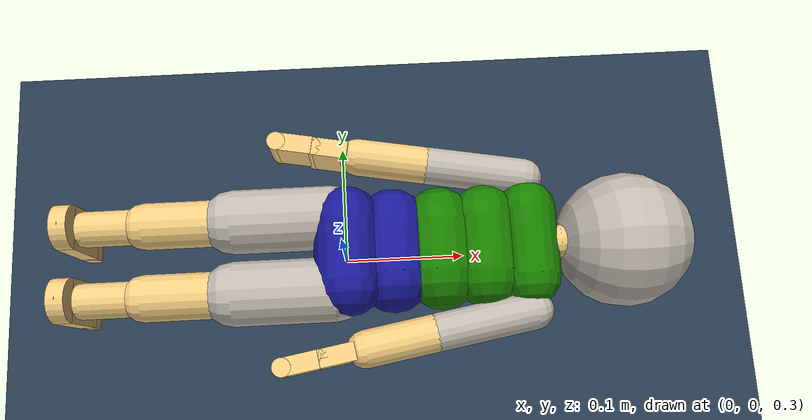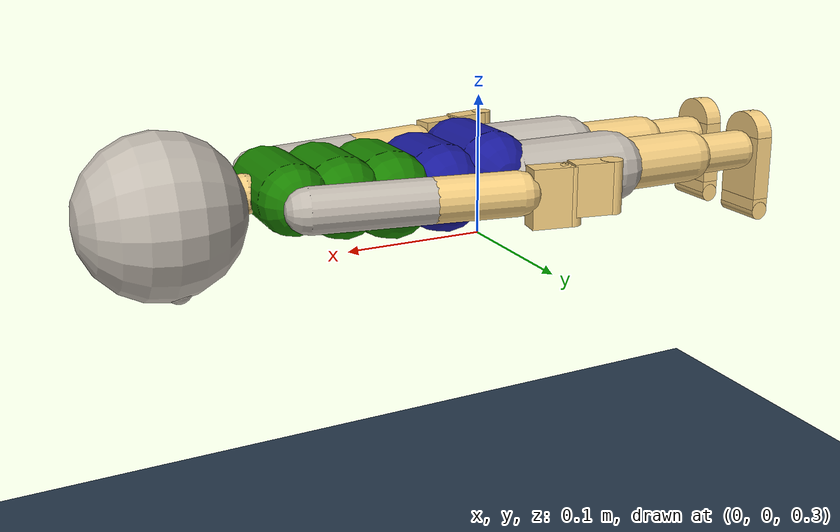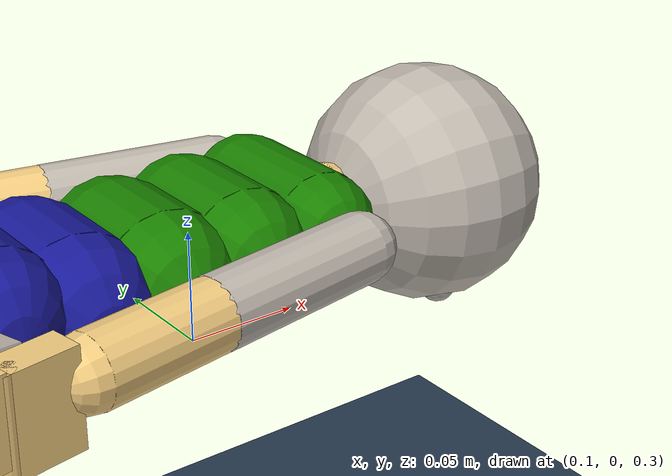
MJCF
<mujoco model="MIMo">

    <compiler inertiafromgeom="true" angle="degree"/>
    <option timestep="0.005" iterations="50" tolerance="1e-10" solver="Newton" jacobian="dense" cone="elliptic" impratio="1.0"/>
    <size nconmax="1000" njmax="5000" nstack="10000000" nuser_cam="3"/>

    <visual>
        <map force="0.1" zfar="30" znear="0.005"/>
        <rgba haze="0.15 0.25 0.35 1"/>
        <quality shadowsize="4096"/>
        <global offwidth="800" offheight="800"/>
    </visual>

    <asset>

        <texture type="skybox" builtin="gradient" rgb1="0.3 0.5 0.7" rgb2="0 0 0" width="512" height="512"/>

        <texture name="texplane" type="2d" builtin="checker" rgb1=".2 .3 .4" rgb2=".1 0.15 0.2" width="512" height="512" mark="cross" markrgb=".8 .8 .8"/>
        <material name="matplane" reflectance="0.3" texture="texplane" texrepeat="1 1" texuniform="true"/>

        <material name="orange" rgba="0.9 0.4 0 1" specular=".2" shininess=".8"/>

    </asset>

	<size nuser_actuator="3" />

	<default>
		<default class="mimo">
        	<joint limited="true" damping=".1" stiffness=".1" armature="0.001" solimplimit="0.98 0.99 0.001 .5 1" solreflimit="0.02 1" />
        	<geom condim="3" material="skin" friction="1 0.005 0.0002" solimp="0.95 0.99 0.001 0.5 1" solref="0.005 1" />
        	<motor ctrlrange="-1 1" ctrllimited="true" forcelimited="true" />
		</default>
    </default>

    <asset>

		<texture name="tex_head_default" type="cube" fileright="tex/head_front.png" fileleft="tex/head_back.png" fileup="tex/head_left.png" filedown="tex/head_right.png" filefront="tex/head_top.png" rgb1="0.95 .8 .5" />
		<texture name="tex_head_happy" type="cube" fileright="tex/head_front_happy.png" fileleft="tex/head_back.png" fileup="tex/head_left.png" filedown="tex/head_right.png" filefront="tex/head_top.png" rgb1="0.95 .8 .5" />
		<texture name="tex_head_sad" type="cube" fileright="tex/head_front_sad.png" fileleft="tex/head_back.png" fileup="tex/head_left.png" filedown="tex/head_right.png" filefront="tex/head_top.png" rgb1="0.95 .8 .5" />
		<texture name="tex_head_surprised" type="cube" fileright="tex/head_front_surprised.png" fileleft="tex/head_back.png" fileup="tex/head_left.png" filedown="tex/head_right.png" filefront="tex/head_top.png" rgb1="0.95 .8 .5" />
		<texture name="tex_head_angry" type="cube" fileright="tex/head_front_angry.png" fileleft="tex/head_back.png" fileup="tex/head_left.png" filedown="tex/head_right.png" filefront="tex/head_top.png" rgb1="0.95 .8 .5" />
		<texture name="tex_head_disgusted" type="cube" fileright="tex/head_front_disgusted.png" fileleft="tex/head_back.png" fileup="tex/head_left.png" filedown="tex/head_right.png" filefront="tex/head_top.png" rgb1="0.95 .8 .5" />
		<texture name="tex_head_scared" type="cube" fileright="tex/head_front_scared.png" fileleft="tex/head_back.png" fileup="tex/head_left.png" filedown="tex/head_right.png" filefront="tex/head_top.png" rgb1="0.95 .8 .5" />
		<texture name="tex_top_sleeve" type="cube" fileright="tex/sleeve_right.png" fileleft="tex/sleeve_left.png" fileup="tex/sleeve_up.png" filedown="tex/sleeve_down.png" filefront="tex/sleeve_front.png" fileback="tex/sleeve_back.png" rgb1="0.95 .8 .5" />
		<texture name="tex_pants_leg" type="cube" fileright="tex/leg_right.png" fileleft="tex/leg_left.png" fileup="tex/leg_up.png" filedown="tex/leg_down.png" filefront="tex/leg_front.png" fileback="tex/leg_back.png" rgb1="0.95 .8 .5" />
		<texture name="tex_eye_left" type="cube" fileright="tex/eye_pupil_left.png" rgb1="1 1 1" />
		<texture name="tex_eye_right" type="cube" fileright="tex/eye_pupil_right.png" rgb1="1 1 1" />

		<material name="skin" rgba="0.95 0.8 0.5 1" specular=".15" shininess=".7" />
		<material name="buttons" rgba=".05 .05 .05 1" specular=".9" shininess=".9" />
		<material name="head" texture="tex_head_default" texuniform="true" specular=".0" shininess=".0" />
		<material name="top_up" rgba=".1 .5 0.0 1" specular=".0" shininess=".0" />
		<material name="top_middle" rgba=".1 .5 0.0 1" specular=".0" shininess=".0" />
		<material name="top_down" rgba=".1 .5 0.0 1" specular=".0" shininess=".0" />
		<material name="top_sleeve" texture="tex_top_sleeve" texuniform="true" specular=".0" shininess=".0" />
		<material name="pants_up" rgba="0.1 0.1 0.6 1" specular=".0" shininess=".0" />
		<material name="pants_down" rgba="0.1 0.1 0.6 1" specular=".0" shininess=".0" />
		<material name="pants_leg" texture="tex_pants_leg" texuniform="true" specular=".0" shininess=".0" />
		<material name="eye_left" texture="tex_eye_left" texuniform="true" specular=".0" shininess=".0" />
		<material name="eye_right" texture="tex_eye_right" texuniform="true" specular=".0" shininess=".0" />

    </asset>

	<contact>
		<pair geom1="lb" geom2="ub1" condim="1" />
		<exclude body1="left_eye" body2="upper_body" />
		<exclude body1="right_eye" body2="upper_body" />
	</contact>

	<tendon>
		<fixed class="mimo" name="hip_bend" limited="true" range="-.01 .01">
			<joint joint="robot:hip_bend1" coef="1" />
			<joint joint="robot:hip_bend2" coef="-1" />
		</fixed>
		<fixed class="mimo" name="hip_rotation" limited="true" range="-.01 .01">
			<joint joint="robot:hip_rot1" coef="1" />
			<joint joint="robot:hip_rot2" coef="-1" />
		</fixed>
		<fixed class="mimo" name="hip_lean" limited="true" range="-.01 .01">
			<joint joint="robot:hip_lean1" coef="1" />
			<joint joint="robot:hip_lean2" coef="-.5" />
		</fixed>
		<fixed class="mimo" name="head_limits1" limited="true" range="-2.1 2.1">
			<joint joint="robot:head_swivel" coef="1" />
			<joint joint="robot:head_tilt_side" coef="1" />
		</fixed>
		<fixed class="mimo" name="head_limits2" limited="true" range="-2.1 2.1">
			<joint joint="robot:head_tilt" coef="1" />
			<joint joint="robot:head_tilt_side" coef="1" />
		</fixed>
		<fixed class="mimo" name="head_limits3" limited="true" range="-2.1 2.1">
			<joint joint="robot:head_swivel" coef="1" />
			<joint joint="robot:head_tilt" coef="1" />
		</fixed>
		<fixed class="mimo" name="head_limits1_sym" limited="true" range="-2.1 2.1">
			<joint joint="robot:head_swivel" coef="1" />
			<joint joint="robot:head_tilt_side" coef="-1" />
		</fixed>
		<fixed class="mimo" name="head_limits2_sym" limited="true" range="-2.1 2.1">
			<joint joint="robot:head_tilt" coef="1" />
			<joint joint="robot:head_tilt_side" coef="-1" />
		</fixed>
		<fixed class="mimo" name="head_limits3_sym" limited="true" range="-2.1 2.1">
			<joint joint="robot:head_swivel" coef="1" />
			<joint joint="robot:head_tilt" coef="-1" />
		</fixed>
	</tendon>

	<sensor>
		<accelerometer name="vestibular_acc" site="vestibular" />
		<gyro name="vestibular_gyro" site="vestibular" />

		<torque name="proprio:neck" site="torque_neck" />
		<torque name="proprio:left_eye" site="torque_left_eye" />
		<torque name="proprio:right_eye" site="torque_right_eye" />

		<torque name="proprio:chest" site="torque_chest" />
		<torque name="proprio:trunk_upper" site="torque_ub" />
		<torque name="proprio:trunk_lower" site="torque_lb" />

		<torque name="proprio:right_shoulder" site="torque_right_shoulder" />
		<torque name="proprio:right_elbow" site="torque_right_elbow" />
		<torque name="proprio:right_wrist" site="torque_right_wrist" />
		<torque name="proprio:right_fingers" site="torque_right_fingers" />

		<torque name="proprio:left_shoulder" site="torque_left_shoulder" />
		<torque name="proprio:left_elbow" site="torque_left_elbow" />
		<torque name="proprio:left_wrist" site="torque_left_wrist" />
		<torque name="proprio:left_fingers" site="torque_left_fingers" />

		<torque name="proprio:right_hip" site="torque_right_hip" />
		<torque name="proprio:right_knee" site="torque_right_knee" />
		<torque name="proprio:right_ankle" site="torque_right_ankle" />
		<torque name="proprio:right_toes" site="torque_right_toes" />

		<torque name="proprio:left_hip" site="torque_left_hip" />
		<torque name="proprio:left_knee" site="torque_left_knee" />
		<torque name="proprio:left_ankle" site="torque_left_ankle" />
		<torque name="proprio:left_toes" site="torque_left_toes" />

		<framelinvel name="kobayashi:left_wrist" objtype="site" objname="KOBAYASHI_LWrist" />
		<framelinvel name="kobayashi:right_wrist" objtype="site" objname="KOBAYASHI_RWrist" />
		<framelinvel name="kobayashi:left_ankle" objtype="site" objname="KOBAYASHI_LAnkle" />
		<framelinvel name="kobayashi:right_ankle" objtype="site" objname="KOBAYASHI_RAnkle" />
		<framelinvel name="kobayashi:torso" objtype="site" objname="KOBAYASHI_Torso" />
	</sensor>

  <actuator>
		<motor class="mimo" name="act:hip_bend" joint="robot:hip_bend1" gear="1.9656450510895187" forcerange="-1 .765" user=".8574 32.93 22.97" />
		<motor class="mimo" name="act:hip_twist" joint="robot:hip_rot1" gear="0.6744131886063283" forcerange="-1 1" user="1.699 8.136 8.136" />
		<motor class="mimo" name="act:hip_lean" joint="robot:hip_lean1" gear="1.3469684896407381" forcerange="-1 1" user="1.278 1.264 1.264" />

		<motor class="mimo" name="act:chest_twist" joint="robot:chest_rot" gear="0.06688395258905734" forcerange="-1 1" user="1.699 8.136 8.136" />
		<motor class="mimo" name="act:chest_lean" joint="robot:chest_lean" gear="0.13376790517811468" forcerange="-1 1" user="1.278 1.264 1.264" />

		<motor class="mimo" name="act:head_swivel" joint="robot:head_swivel" gear="0.7170287341631918" forcerange="-1 1" user=".6665 24.87 24.87" />
		<motor class="mimo" name="act:head_tilt" joint="robot:head_tilt" gear="1.3145526792991848" forcerange="-1 .55" user=".9338 31.39 16.86" />
		<motor class="mimo" name="act:head_tilt_side" joint="robot:head_tilt_side" gear="0.7170287341631918" forcerange="-1 1" user="1.068 15.69 15.69" />

		<motor class="mimo" name="act:left_eye_horizontal" joint="robot:left_eye_horizontal" gear="0.0021510862024895754" forcerange="-1 1" user="5.110 .03025 .03025" />
		<motor class="mimo" name="act:left_eye_vertical" joint="robot:left_eye_vertical" gear="0.0021510862024895754" forcerange="-1 1" user="6.179 .02619 .02771" />
		<motor class="mimo" name="act:left_eye_torsional" joint="robot:left_eye_torsional" gear="0.0014738923980021164" forcerange="-1 1" user="25.03 .003686 .003686" />
		<motor class="mimo" name="act:right_eye_horizontal" joint="robot:right_eye_horizontal" gear="0.0021510862024895754" forcerange="-1 1" user="5.110 .03025 .03025" />
		<motor class="mimo" name="act:right_eye_vertical" joint="robot:right_eye_vertical" gear="0.0021510862024895754" forcerange="-1 1" user="6.179 .02619 .02771" />
		<motor class="mimo" name="act:right_eye_torsional" joint="robot:right_eye_torsional" gear="0.0014738923980021164" forcerange="-1 1" user="25.03 .003686 .003686" />

		<motor class="mimo" name="act:right_shoulder_horizontal" joint="robot:right_shoulder_horizontal" gear="0.4993398493928391" forcerange="-1 1" user="1.811 18.80 15.30" />
		<motor class="mimo" name="act:right_shoulder_abduction" joint="robot:right_shoulder_ad_ab" gear="1.1096441097618646" forcerange="-.6875 1" user=".8793 44.17 69.23" />
		<motor class="mimo" name="act:right_shoulder_internal" joint="robot:right_shoulder_rotation" gear="0.6935275686011654" forcerange="-1 .64" user="1.498 25.09 17.10" />
		<motor class="mimo" name="act:right_elbow" joint="robot:right_elbow" gear="1.1132438625653438" forcerange="-1 .83" user="1.566 35.43 27.04" />
		<motor class="mimo" name="act:right_wrist_rotation" joint="robot:right_hand1" gear="0.24606580201074185" forcerange="-1 1" user="1.513 7.842 7.842" />
		<motor class="mimo" name="act:right_wrist_flexion" joint="robot:right_hand2" gear="0.4358879921333142" forcerange="-1 .57" user="1.455 13.66 7.874" />
		<motor class="mimo" name="act:right_wrist_ulnar" joint="robot:right_hand3" gear="0.3339464455860068" forcerange="-.87 1" user="2.254 5.155 6.021" />
		<motor class="mimo" name="act:right_fingers" joint="robot:right_fingers" gear="0.24255057626773127" forcerange="-1 .33" user="3.019 6.854 2.551" />

		<motor class="mimo" name="act:left_shoulder_horizontal" joint="robot:left_shoulder_horizontal" gear="0.4993398493928391" forcerange="-1 1" user="1.811 18.80 15.30" />
		<motor class="mimo" name="act:left_shoulder_abduction" joint="robot:left_shoulder_ad_ab" gear="1.1096441097618646" forcerange="-.6875 1" user=".8793 44.17 69.23" />
		<motor class="mimo" name="act:left_shoulder_internal" joint="robot:left_shoulder_rotation" gear="0.6935275686011654" forcerange="-1 .64" user="1.498 25.09 17.10" />
		<motor class="mimo" name="act:left_elbow" joint="robot:left_elbow" gear="1.1132438625653438" forcerange="-1 .83" user="1.566 35.43 27.04" />
		<motor class="mimo" name="act:left_wrist_rotation" joint="robot:left_hand1" gear="0.24606580201074185" forcerange="-1 1" user="1.513 7.842 7.842" />
		<motor class="mimo" name="act:left_wrist_flexion" joint="robot:left_hand2" gear="0.4358879921333142" forcerange="-1 .57" user="1.455 13.66 7.874" />
		<motor class="mimo" name="act:left_wrist_ulnar" joint="robot:left_hand3" gear="0.3339464455860068" forcerange="-.87 1" user="2.254 5.155 6.021" />
		<motor class="mimo" name="act:left_fingers" joint="robot:left_fingers" gear="0.24255057626773127" forcerange="-1 .33" user="3.019 6.854 2.551" />

		<motor class="mimo" name="act:right_hip_flex" joint="robot:right_hip1" gear="2.626170534644533" forcerange="-1 1" user="1.083 71.25 92.49" />
		<motor class="mimo" name="act:right_hip_abduction" joint="robot:right_hip2" gear="2.048413017022736" forcerange="-1 1" user="1.488 24.81 29.20" />
		<motor class="mimo" name="act:right_hip_rotation" joint="robot:right_hip3" gear="1.1620804615802058" forcerange="-.75 1" user="1.860 12.32 15.78" />
		<motor class="mimo" name="act:right_knee" joint="robot:right_knee" gear="2.8953460212410613" forcerange="-.65 1" user="1.450 63.16 89.27" />
		<motor class="mimo" name="act:right_foot_flexion" joint="robot:right_foot1" gear="1.265382259751871" forcerange="-1 .5" user="1.430 21.34 11.87" />
		<motor class="mimo" name="act:right_foot_inversion" joint="robot:right_foot2" gear="0.3883183654265001" forcerange="-.91 1" user="1.988 4.184 4.645" />
		<motor class="mimo" name="act:right_foot_rotation" joint="robot:right_foot3" gear="0.4017086538894829" forcerange="-1 1" user="2.688 3.868 3.625" />
		<motor class="mimo" name="act:right_toes" joint="robot:right_toes" gear="0.11046987981960779" forcerange="-1 .3" user="1.290 2.947 .8440" />

		<motor class="mimo" name="act:left_hip_flex" joint="robot:left_hip1" gear="2.626170534644533" forcerange="-1 1" user="1.083 71.25 92.49" />
		<motor class="mimo" name="act:left_hip_abduction" joint="robot:left_hip2" gear="2.048413017022736" forcerange="-1 1" user="1.488 24.81 29.20" />
		<motor class="mimo" name="act:left_hip_rotation" joint="robot:left_hip3" gear="1.1620804615802058" forcerange="-.75 1" user="1.860 12.32 15.78" />
		<motor class="mimo" name="act:left_knee" joint="robot:left_knee" gear="2.8953460212410613" forcerange="-.65 1" user="1.450 63.16 89.27" />
		<motor class="mimo" name="act:left_foot_flexion" joint="robot:left_foot1" gear="1.265382259751871" forcerange="-1 .5" user="1.430 21.34 11.87" />
		<motor class="mimo" name="act:left_foot_inversion" joint="robot:left_foot2" gear="0.3883183654265001" forcerange="-.91 1" user="1.988 4.184 4.645" />
		<motor class="mimo" name="act:left_foot_rotation" joint="robot:left_foot3" gear="0.4017086538894829" forcerange="-1 1" user="2.688 3.868 3.625" />
		<motor class="mimo" name="act:left_toes" joint="robot:left_toes" gear="0.11046987981960779" forcerange="-1 .3" user="1.290 2.947 .8440" />
	</actuator>

	<equality>
		<joint name="robot:hip_lean1" joint1="robot:hip_lean1" active="false" polycoef="0 1 0 0 0" />
		<joint name="robot:hip_rot1" joint1="robot:hip_rot1" active="false" polycoef="0 1 0 0 0" />
		<joint name="robot:hip_bend1" joint1="robot:hip_bend1" active="false" polycoef="0 1 0 0 0" />
		<joint name="robot:hip_lean2" joint1="robot:hip_lean2" active="false" polycoef="0 1 0 0 0" />
		<joint name="robot:hip_rot2" joint1="robot:hip_rot2" active="false" polycoef="0 1 0 0 0" />
		<joint name="robot:hip_bend2" joint1="robot:hip_bend2" active="false" polycoef="0 1 0 0 0" />
		<joint name="robot:head_swivel" joint1="robot:head_swivel" active="false" polycoef="0 1 0 0 0" />
		<joint name="robot:head_tilt" joint1="robot:head_tilt" active="false" polycoef="0 1 0 0 0" />
		<joint name="robot:head_tilt_side" joint1="robot:head_tilt_side" active="false" polycoef="0 1 0 0 0" />
		<joint name="robot:left_eye_horizontal" joint1="robot:left_eye_horizontal" active="false" polycoef="0 1 0 0 0" />
		<joint name="robot:left_eye_vertical" joint1="robot:left_eye_vertical" active="false" polycoef="0 1 0 0 0" />
		<joint name="robot:left_eye_torsional" joint1="robot:left_eye_torsional" active="false" polycoef="0 1 0 0 0" />
		<joint name="robot:right_eye_horizontal" joint1="robot:right_eye_horizontal" active="false" polycoef="0 1 0 0 0" />
		<joint name="robot:right_eye_vertical" joint1="robot:right_eye_vertical" active="false" polycoef="0 1 0 0 0" />
		<joint name="robot:right_eye_torsional" joint1="robot:right_eye_torsional" active="false" polycoef="0 1 0 0 0" />
		<joint name="robot:right_shoulder_horizontal" joint1="robot:right_shoulder_horizontal" active="false" polycoef="0 1 0 0 0" />
		<joint name="robot:right_shoulder_ad_ab" joint1="robot:right_shoulder_ad_ab" active="false" polycoef="0 1 0 0 0" />
		<joint name="robot:right_shoulder_rotation" joint1="robot:right_shoulder_rotation" active="false" polycoef="0 1 0 0 0" />
		<joint name="robot:right_elbow" joint1="robot:right_elbow" active="false" polycoef="0 1 0 0 0" />
		<joint name="robot:right_hand1" joint1="robot:right_hand1" active="false" polycoef="0 1 0 0 0" />
		<joint name="robot:right_hand2" joint1="robot:right_hand2" active="false" polycoef="0 1 0 0 0" />
		<joint name="robot:right_hand3" joint1="robot:right_hand3" active="false" polycoef="0 1 0 0 0" />
		<joint name="robot:right_fingers" joint1="robot:right_fingers" active="false" polycoef="0 1 0 0 0" />
		<joint name="robot:left_shoulder_horizontal" joint1="robot:left_shoulder_horizontal" active="false" polycoef="0 1 0 0 0" />
		<joint name="robot:left_shoulder_ad_ab" joint1="robot:left_shoulder_ad_ab" active="false" polycoef="0 1 0 0 0" />
		<joint name="robot:left_shoulder_rotation" joint1="robot:left_shoulder_rotation" active="false" polycoef="0 1 0 0 0" />
		<joint name="robot:left_elbow" joint1="robot:left_elbow" active="false" polycoef="0 1 0 0 0" />
		<joint name="robot:left_hand1" joint1="robot:left_hand1" active="false" polycoef="0 1 0 0 0" />
		<joint name="robot:left_hand2" joint1="robot:left_hand2" active="false" polycoef="0 1 0 0 0" />
		<joint name="robot:left_hand3" joint1="robot:left_hand3" active="false" polycoef="0 1 0 0 0" />
		<joint name="robot:left_fingers" joint1="robot:left_fingers" active="false" polycoef="0 1 0 0 0" />
		<joint name="robot:right_hip1" joint1="robot:right_hip1" active="false" polycoef="0 1 0 0 0" />
		<joint name="robot:right_hip2" joint1="robot:right_hip2" active="false" polycoef="0 1 0 0 0" />
		<joint name="robot:right_hip3" joint1="robot:right_hip3" active="false" polycoef="0 1 0 0 0" />
		<joint name="robot:right_knee" joint1="robot:right_knee" active="false" polycoef="0 1 0 0 0" />
		<joint name="robot:right_foot1" joint1="robot:right_foot1" active="false" polycoef="0 1 0 0 0" />
		<joint name="robot:right_foot2" joint1="robot:right_foot2" active="false" polycoef="0 1 0 0 0" />
		<joint name="robot:right_foot3" joint1="robot:right_foot3" active="false" polycoef="0 1 0 0 0" />
		<joint name="robot:right_toes" joint1="robot:right_toes" active="false" polycoef="0 1 0 0 0" />
		<joint name="robot:left_hip1" joint1="robot:left_hip1" active="false" polycoef="0 1 0 0 0" />
		<joint name="robot:left_hip2" joint1="robot:left_hip2" active="false" polycoef="0 1 0 0 0" />
		<joint name="robot:left_hip3" joint1="robot:left_hip3" active="false" polycoef="0 1 0 0 0" />
		<joint name="robot:left_knee" joint1="robot:left_knee" active="false" polycoef="0 1 0 0 0" />
		<joint name="robot:left_foot1" joint1="robot:left_foot1" active="false" polycoef="0 1 0 0 0" />
		<joint name="robot:left_foot2" joint1="robot:left_foot2" active="false" polycoef="0 1 0 0 0" />
		<joint name="robot:left_foot3" joint1="robot:left_foot3" active="false" polycoef="0 1 0 0 0" />
		<joint name="robot:left_toes" joint1="robot:left_toes" active="false" polycoef="0 1 0 0 0" />
	</equality>

    <equality>
        <weld body1="left_eye" body2="head"/>
        <weld body1="right_eye" body2="head"/>
    </equality>

    <worldbody>

        <geom name="floor" pos="0 0 0" size="0 0 .25" type="plane" material="matplane" condim="3"/>

        <light directional="false" diffuse=".4 .4 .4" specular="0 0 0" pos="0 0 10" dir="0 0 -1" castshadow="false"/>
        <light mode="targetbodycom" target="upper_body" directional="false" diffuse=".75 .75 .75" specular="0.3 0.3 0.3" pos="3 0 5" dir="0 0 -1"/>

        <body name="mimo_location" pos="0 0 0.35" euler="0 90 0">
            <freejoint name="mimo_location"/>

	<body childclass="mimo" name="hip" pos="0 0 0">

		<geom name="lb" type="capsule" size="0.027389307207886213 0.024536254373731397 0.0" mass="0.21521769633101118" material="pants_down" pos="-0.002 0.0 0.002853052834154814" euler="90 0 0" />
		<site name="lowerBody_center" type="sphere" size=".01 .01 .01" pos="0 0 0" />
		<site name="BODY_25:MidHip" type="sphere" size=".005" pos="0.005 0.0 -0.007" rgba="0 0 0 1" />
		<body name="lower_body" pos="0.002 0.0 0.04336640307915317">
			<joint name="robot:hip_lean1" type="hinge" pos="0.0 0.0 -0.03024236004204103" axis="1 0 0" range="-14 14" stiffness="3.38" damping="0.77" frictionloss=".049" armature="0.01" />
			<joint name="robot:hip_rot1" type="hinge" pos="0.0 0.0 -0.03024236004204103" axis="0 0 1" range="-18 18" stiffness="1.45" damping="0.29" frictionloss=".018" armature="0.01" />
			<joint name="robot:hip_bend1" type="hinge" pos="0.0 0.0 -0.03024236004204103" axis="0 1 0" range="-17 30.5" stiffness="2.20" damping="0.84" frictionloss="0.040" armature="0.01" />
			<site name="torque_lb" type="sphere" size="0.01" pos="0 0 0" group="4" />
			<geom name="cb" type="capsule" size="0.03024236004204103 0.019971369839083698 0.0" mass="0.2460772089005735" material="pants_up" contype="0" pos="0.005 0.0 -0.004564884534647703" euler="90 0 0" />

			<body name="upper_body" pos="-0.002 0.0 0.05192556158161762">

				<site name="KOBAYASHI_Torso" type="sphere" size="0.01" pos=".029671749475210063 0 0.029671749475210063" rgba="1 0 0 0" />
				<joint name="robot:hip_lean2" type="hinge" pos="0.0 0.0 -0.029671749475210063" axis="1 0 0" range="-27 27" stiffness="1.69" damping="0.38" frictionloss=".024" armature="0.01" />
				<joint name="robot:hip_rot2" type="hinge" pos="0.0 0.0 -0.029671749475210063" axis="0 0 1" range="-18 18" stiffness="1.45" damping="0.29" frictionloss=".018" armature="0.01" />
				<joint name="robot:hip_bend2" type="hinge" pos="0.0 0.0 -0.029671749475210063" axis="0 1 0" range="-17 30.5" stiffness="2.20" damping="0.84" frictionloss="0.040" armature="0.01" />
				<site name="torque_ub" type="sphere" size="0.01" pos="0 0 0" group="4" />
				<geom name="ub1" type="capsule" size="0.029671749475210063 0.019971369839083694 0.0" mass="0.20217532557614493" material="top_down" pos="0.007 0.0 -0.018259538138590808" euler="90 0 0" />
				<geom name="ub2" type="capsule" size="0.027389307207886217 0.02225381210640754 0.0" mass="0.1764807404565155" material="top_middle" pos="0.004 0.0 0.017118317004928885" euler="90 0 0" />
				<geom name="neck" type="capsule" size="0.013520166274065569 1e-06 0.0" mass="0.0" material="skin" pos="0.0 0.0 0.07475098425485613" euler="0 0 0" />

				<body name="chest" pos="0.0 0.0 0.051354951014786654">
					<site name="BODY_25:Neck" type="sphere" size=".005 .005 .005" pos="0.0 0.0 0.0" rgba="0 0 0 1" />
					<joint name="robot:chest_lean" type="hinge" pos="0 0 0" axis="1 0 0" range="-9 9" stiffness="1.69" damping="0.38" frictionloss=".024" armature="0.01" />
					<joint name="robot:chest_rot" type="hinge" pos="0 0 0" axis="0 0 1" range="-18 18" stiffness="1.45" damping="0.29" frictionloss=".018" armature="0.01" />
					<site name="torque_chest" type="sphere" size="0.01" pos="0 0 0" group="4" />
					<geom name="ub3" type="capsule" size="0.023395033240069477 0.02681869664105525 0.0" mass="0.1340837460653408" material="top_up" pos="0 0 0" euler="90 0 0" />

					<body name="right_upper_arm" pos="0.0 -0.053968421497561536 0.0" euler="170 0 0">

						<site name="BODY_25:RShoulder" type="sphere" size=".005 .005 .005" pos="0.0 0.0 0.0" rgba="0 0 0 1" />
						<joint name="robot:right_shoulder_horizontal" type="hinge" pos="0 0 0" axis="0 1 -4" range="-28 118" stiffness=".09" damping=".05" frictionloss=".0009" armature="0.004" />
						<joint name="robot:right_shoulder_ad_ab" type="hinge" pos="0 0 0" axis="-1 0 0" range="-84 183" stiffness=".11" damping=".10" frictionloss=".0014" armature="0.004" />
						<joint name="robot:right_shoulder_rotation" type="hinge" pos="0 0 0" axis="0 0 -1" range="-99 67" stiffness=".12" damping=".07" frictionloss=".0008" armature="0.004" />
						<site name="torque_right_shoulder" type="sphere" size="0.01" pos="0 0 0" group="4" />
						<geom name="right_uarm1" type="capsule" material="top_sleeve" size="0.015018766465747228 0.03929202947840549 0.0" mass="0.07445711976502113" pos="0.0 0.0 0.03929202947840549" euler="0 0 0" />
						<body name="right_lower_arm" pos="0.0 -0.0 0.07858405895681098" euler="0 0 0">

							<site name="KOBAYASHI_RWrist" type="sphere" size=".01" pos="0 0.016252 .0517" rgba="1 0 0 0" />
							<site name="BODY_25:RElbow" type="sphere" size=".005 .005 .005" pos="0.0 0.0 0.0" rgba="0 0 0 1" />
							<joint name="robot:right_elbow" type="hinge" pos="0 0 0" axis="0 -1 0" springref="-20" range="-146 5" stiffness=".13" damping=".11" frictionloss=".030" armature="0.002" />
							<site name="torque_right_elbow" type="sphere" size="0.01" pos="0 0 0" group="4" />
							<geom name="right_larm" type="capsule" size="0.014910209668292491 0.028568162949569202 0.0" mass="0.057301135481488394" pos="0.0 0.0 0.028568162949569202" />
							<body name="right_hand" pos="0.0 -0.0 0.06461905767388132" euler="0 0 0">
								<site name="BODY_25:RWrist" type="sphere" size=".005 .005 .005" pos="0.0 0.0 0.0" />
								<joint name="robot:right_hand1" type="hinge" pos="0 0 0" axis="0 0 -1" springref="-20" range="-90 90" stiffness=".22" damping=".03" frictionloss=".007" armature="0.001" />
								<joint name="robot:right_hand2" type="hinge" pos="0 0 0" axis="-1 0 0" range="-92 86" stiffness=".33" damping=".11" frictionloss=".007" armature="0.001" />
								<joint name="robot:right_hand3" type="hinge" pos="0 0 0" axis="0 1 0" range="-53 48" stiffness=".38" damping=".11" frictionloss=".007" armature="0.001" />
								<site name="torque_right_wrist" type="sphere" size="0.01" pos="0 0 0" group="4" />
								<geom name="geom:right_hand1" type="box" size="0.020018572295820818 0.007174866251031315 0.014304608113573057" mass="0.015168199081090732" pos="0.0035874331255156574 0.0 0.014304608113573057" />
								<geom name="geom:right_hand2" type="cylinder" size="0.0073748662510313145 0.020018572295820818 0.0" mass="0.006030575653019663" pos="0.0035874331255156574 0.0 0.028609216227146114" euler="0 90 0" />
								<body name="right_fingers" pos="0.0 -0.0 0.028609216227146114">
									<joint name="robot:right_fingers" type="hinge" pos="0 0 0" axis="-1 0 0" springref="-40" range="-160 8" stiffness=".017" damping=".018" frictionloss=".0023" armature="0.0001" />
									<site name="torque_right_fingers" type="sphere" size="0.01" pos="0 0 0" group="4" />
									<geom name="geom:right_fingers1" type="box" size="0.017686268652304795 0.007174866251031315 0.01423583595918088" mass="0.013373673318932218" pos="0.0 0.0 0.01423583595918088" friction="5 0.02 0.01" />
									<geom name="geom:right_fingers2" type="cylinder" size="0.0073748662510313145 0.017886268652304794 0.0" mass="0.005378481896058459" pos="0.0 0.0 0.02847167191836176" euler="0 90 0" friction="5 0.02 0.01" />
								</body>
							</body>
						</body>
					</body>

					<body name="left_upper_arm" pos="0.0 0.053968421497561536 0.0" euler="-170 0 0">

						<site name="BODY_25:LShoulder" type="sphere" size=".005 .005 .005" pos="0.0 0.0 0.0" rgba="0 0 0 1" />
						<joint name="robot:left_shoulder_horizontal" type="hinge" pos="0 0 0" axis="0 1 4" range="-28 118" stiffness=".09" damping=".05" frictionloss=".0009" armature="0.004" />
						<joint name="robot:left_shoulder_ad_ab" type="hinge" pos="0 0 0" axis="1 0 0" range="-84 183" stiffness=".11" damping=".10" frictionloss=".0014" armature="0.004" />
						<joint name="robot:left_shoulder_rotation" type="hinge" pos="0 0 0" axis="0 0 1" range="-99 67" stiffness=".12" damping=".07" frictionloss=".0008" armature="0.004" />
						<site name="torque_left_shoulder" type="sphere" size="0.01" pos="0 0 0" group="4" />
						<geom name="left_uarm1" type="capsule" material="top_sleeve" size="0.015018766465747228 0.03929202947840549 0.0" mass="0.07445711976502113" pos="0.0 0.0 0.03929202947840549" euler="0 0 0" />
						<body name="left_lower_arm" pos="0.0 0.0 0.07858405895681098" euler="0 0 0">

							<site name="KOBAYASHI_LWrist" type="sphere" size=".01" pos="0 -0.016252 .0517" rgba="1 0 0 0" />
							<site name="BODY_25:LElbow" type="sphere" size=".005 .005 .005" pos="0.0 0.0 0.0" rgba="0 0 0 1" />
							<joint name="robot:left_elbow" type="hinge" pos="0 0 0" axis="0 -1 0" springref="-20" range="-146 5" stiffness=".13" damping=".11" frictionloss=".030" armature="0.002" />
							<site name="torque_left_elbow" type="sphere" size="0.01" pos="0 0 0" group="4" />
							<geom name="left_larm" type="capsule" size="0.014910209668292491 0.028568162949569202 0.0" mass="0.057301135481488394" pos="0.0 0.0 0.028568162949569202" />
							<body name="left_hand" pos="0.0 0.0 0.06461905767388132" euler="0 0 0">
								<site name="BODY_25:LWrist" type="sphere" size=".005 .005 .005" pos="0.0 0.0 0.0" rgba="0 0 0 1" />
								<joint name="robot:left_hand1" type="hinge" pos="0 0 0" axis="0 0 1" springref="-20" range="-90 90" stiffness=".22" damping=".03" frictionloss=".007" armature="0.001" />
								<joint name="robot:left_hand2" type="hinge" pos="0 0 0" axis="1 0 0" range="-92 86" stiffness=".33" damping=".11" frictionloss=".007" armature="0.001" />
								<joint name="robot:left_hand3" type="hinge" pos="0 0 0" axis="0 1 0" range="-53 48" stiffness=".38" damping=".11" frictionloss=".007" armature="0.001" />
								<site name="torque_left_wrist" type="sphere" size="0.01" pos="0 0 0" group="4" />
								<geom name="geom:left_hand1" type="box" size="0.020018572295820818 0.007174866251031315 0.014304608113573057" mass="0.015168199081090732" pos="0.0035874331255156574 0.0 0.014304608113573057" />
								<geom name="geom:left_hand2" type="cylinder" size="0.0073748662510313145 0.020018572295820818 0.0" mass="0.006030575653019663" pos="0.0035874331255156574 0.0 0.028609216227146114" euler="0 90 0" />
								<body name="left_fingers" pos="0.0 0.0 0.028609216227146114">
									<joint name="robot:left_fingers" type="hinge" pos="0 0 0" axis="1 0 0" springref="-40" range="-160 8" stiffness=".017" damping=".018" frictionloss=".0023" armature="0.0001" />
									<site name="torque_left_fingers" type="sphere" size="0.01" pos="0 0 0" group="4" />
									<geom name="geom:left_fingers1" type="box" size="0.017686268652304795 0.007174866251031315 0.01423583595918088" mass="0.013373673318932218" pos="0.0 0.0 0.01423583595918088" friction="5 0.02 0.01" />
									<geom name="geom:left_fingers2" type="cylinder" size="0.0073748662510313145 0.017886268652304794 0.0" mass="0.005378481896058459" pos="0.0 0.0 0.02847167191836176" euler="0 90 0" friction="5 0.02 0.01" />
								</body>
							</body>
						</body>
					</body>
				</body>
				<body name="head" pos="0.0 0.0 0.07475198425485613">
					<geom name="head" type="sphere" size="0.054080665096262276 0.0 0.0" mass="0.706990331884907" material="head" pos="0.007357913618539086 0.0 0.054080665096262276" />
					<site name="vestibular" type="sphere" size="0.01" pos="0.01 0.0 0.054080665096262276" group="4" />
					<site name="torque_neck" type="sphere" size="0.01" pos="0 0 0" group="4" />
					<joint name="robot:head_swivel" type="hinge" pos="0 0 0" axis="0 0 1" range="-111 111" stiffness=".23" damping=".29" frictionloss=".018" armature="0.005" />
					<joint name="robot:head_tilt" type="hinge" pos="0.0 0.0 0.00901344418271038" axis="0 1 0" range="-70 81" stiffness=".45" damping=".53" frictionloss=".018" armature="0.005" />
					<joint name="robot:head_tilt_side" type="hinge" pos="0.0 0.0 0.01802688836542076" axis="1 0 0" range="-70 70" stiffness=".37" damping=".29" frictionloss=".018" armature="0.005" />
					<body name="left_eye" pos="0.05150539532977361 0.01802688836542076 0.04957394300490709">
						<site name="BODY_25:LEye" type="sphere" size=".005 .005 .005" pos="0.0 0.0 0.0" rgba="0 0 0 1" />
						<site name="torque_left_eye" type="sphere" size="0.01" pos="0 0 0" group="4" />
						<joint name="robot:left_eye_horizontal" type="hinge" pos="0 0 0" axis="0 0 1" range="-45 45" stiffness=".00065" damping=".00042" frictionloss=".000054" armature=".0002" />
						<joint name="robot:left_eye_vertical" type="hinge" pos="0 0 0" axis="0 -1 0" range="-47 33" stiffness=".00065" damping=".00042" frictionloss=".000054" armature=".0002" />
						<joint name="robot:left_eye_torsional" type="hinge" pos="0 0 0" axis="-1 0 0" range="-8 8" stiffness=".00267" damping=".00042" frictionloss=".000037" armature=".0002" />
						<geom name="geom:left_eye1" type="sphere" material="eye_left" size="0.008277652820856471 0.0 0.0" mass="0.002499641837152238" pos="0 0 0" />
						<camera name="eye_left" mode="fixed" fovy="60" pos="0.01125 0 0" euler="90 -90 0" />
					</body>
					<body name="right_eye" pos="0.05150539532977361 -0.01802688836542076 0.04957394300490709">
						<site name="BODY_25:REye" type="sphere" size=".005 .005 .005" pos="0.0 0.0 0.0" rgba="0 0 0 1" />
						<site name="torque_right_eye" type="sphere" size="0.01" pos="0 0 0" group="4" />
						<joint name="robot:right_eye_horizontal" type="hinge" pos="0 0 0" axis="0 0 -1" range="-45 45" stiffness=".00065" damping=".00042" frictionloss=".000054" armature=".0002" />
						<joint name="robot:right_eye_vertical" type="hinge" pos="0 0 0" axis="0 -1 0" range="-47 33" stiffness=".00065" damping=".00042" frictionloss=".000054" armature=".0002" />
						<joint name="robot:right_eye_torsional" type="hinge" pos="0 0 0" axis="1 0 0" range="-8 8" stiffness=".00267" damping=".00042" frictionloss=".000037" armature=".0002" />
						<geom name="geom:right_eye1" type="sphere" material="eye_right" size="0.008277652820856471 0.0 0.0" mass="0.002499641837152238" pos="0 0 0" />
						<camera name="eye_right" mode="fixed" fovy="60" pos="0.01125 0 0" euler="90 -90 0" />
					</body>
					<site name="BODY_25:Nose" type="sphere" size=".005" pos="0.05040170828699274 0.0 0.03200692424064502" rgba="0 0 0 1" />
					<site name="BODY_25:LEar" type="sphere" size=".005" pos="0.01 0.04598696011586929 0.04230800330659974" rgba="0 0 0 1" />
					<site name="BODY_25:REar" type="sphere" size=".005" pos="0.01 -0.04598696011586929 0.04230800330659974" rgba="0 0 0 1" />
				</body>
			</body>
		</body>

		<body name="right_upper_leg" pos="0.005 -0.0291011389083791 -0.007">

			<joint name="robot:right_hip1" type="hinge" pos="0 0 0" axis="0 1 0" springref="-10" range="-133 20" stiffness="1.72" damping="1.27" frictionloss=".08" armature=".005" />
			<joint name="robot:right_hip2" type="hinge" pos="0 0 0" axis="1 0 0" range="-51 17" stiffness="3.51" damping="1.99" frictionloss=".062" armature=".005" />
			<joint name="robot:right_hip3" type="hinge" pos="0 0 0" axis="0 0 -1" range="-32 41" stiffness="2.16" damping="0.75" frictionloss=".027" armature=".005" />
			<site name="torque_right_hip" type="sphere" size="0.01" pos="0 0 0" group="4" />
			<site name="BODY_25:RHip" type="sphere" size=".005 .005 .005" pos="0.0 0.0 0.0" rgba="0 0 0 1" />
			<geom name="geom:right_upper_leg1" type="capsule" material="pants_leg" contype="2" conaffinity="3" size="0.026090365627520182 0.040153927118548885 0.0" mass="0.2625513992010872" pos="0.0 0.0 -0.04143885278634245" euler="0 0 0" />
			<body name="right_lower_leg" pos="0.0 -0.0 -0.09233465837358926">

				<site name="KOBAYASHI_RAnkle" type="sphere" size=".01" pos="0.014526774092090683 0 -.0949" rgba="1 0 0 0" />
				<joint name="robot:right_knee" type="hinge" pos="0 0 0" axis="0 -1 0" springref="-30" range="-145 4" stiffness="1.63" damping="0.53" frictionloss=".065" armature=".003" />
				<site name="torque_right_knee" type="sphere" size="0.01" pos="0 0 0" group="4" />
				<site name="BODY_25:RKnee" type="sphere" size=".005 .005 .005" pos="0.0 0.0 0.0" rgba="0 0 0 1" />
				<geom name="geom:right_lower_leg1" type="capsule" size="0.01900339384896901 0.030034866290255584 0.0" mass="0.09673351056966385" pos="0.0 0.0 -0.030034866290255584" euler="0 0 0" />
				<geom name="geom:right_lower_leg2" type="capsule" size="0.014526774092090683 0.01911309673016265 0.0" mass="0.03805966514099927" pos="0.0 0.0 -0.09010459887076674" euler="0 0 0" />
				<body name="right_foot" pos="0.0 -0.0 -0.12013946516102234">
					<joint name="robot:right_foot1" type="hinge" pos="0.0 -0.0 0.010337227855299266" axis="0 -1 0" springref="-10" range="-63 32" stiffness="1.29" damping="0.6" frictionloss=".019" armature=".003" />
					<joint name="robot:right_foot2" type="hinge" pos="0.0 -0.0 0.010337227855299266" axis="1 0 0" range="-33 31" stiffness="0.96" damping="0.37" frictionloss=".011" armature=".0025" />
					<joint name="robot:right_foot3" type="hinge" pos="0.0 -0.0 0.010337227855299266" axis="0 0 1" range="-20 30" stiffness="1.15" damping="0.38" frictionloss=".012" armature=".002" />
					<site name="torque_right_ankle" type="sphere" size="0.01" pos="0 0 0" group="4" />
					<site name="BODY_25:RAnkle" type="sphere" size=".005" pos="0.0 0.0 0.010337227855299266" rgba="0 0 0 1" />
					<site name="BODY_25:RHeel" type="sphere" size=".005" pos="-0.023709606392309245 0.0 0.0" rgba="0 0 0 1" />
					<geom name="geom:right_foot1" type="cylinder" size="0.017826719384593483 0.006791485236866177 0.0" mass="0.011318651942872357" pos="-0.010838677207912798 0.0 0.0" euler="0 0 0" />
					<geom name="geom:right_foot2" type="box" size="0.023709606392309245 0.017926719384593483 0.006891485236866177" mass="0.019583296877112293" pos="0.01287092918439645 0.0 0.0" euler="0 0 0" friction="2 0.02 0.01" />
					<geom name="geom:right_foot3" type="cylinder" size="0.006791485236866177 0.017726719384593484 0.0" mass="0.004265353944485406" pos="0.036580535576705694 0.0 0.0" euler="90 0 0" friction="2 0.02 0.01" />
					<body name="right_toes" pos="0.036580535576705694 -0.0 0.0">
						<joint name="robot:right_toes" type="hinge" pos="0 0 0" axis="0 -1 0" range="-60 80" frictionloss=".005" armature=".0005" stiffness=".106" damping=".04" />
						<site name="torque_right_toes" type="sphere" size="0.01" pos="0 0 0" group="4" />
						<geom name="geom:right_toes1" type="box" size="0.004741921278461849 0.017826719384593483 0.006791485236866177" mass="0.0036065107376409386" pos="0.004741921278461849 0.0 0.0" euler="0 0 0" friction="2 0.02 0.01" />
						<geom name="geom:right_toes2" type="cylinder" size="0.006891485236866177 0.017926719384593483 0.0" mass="0.004175196714455051" pos="0.009483842556923697 0.0 0.0" euler="90 0 0" friction="2 0.02 0.01" />
						<site name="BODY_25:RBigToe" type="sphere" size=".005" pos="0.007451590580440047 0.00860482530460487 0.0" rgba="0 0 0 1" />
						<site name="BODY_25:RSmallToe" type="sphere" size=".005" pos="0.006774173254945498 -0.00860482530460487 0.0" rgba="0 0 0 1" />
					</body>
				</body>
			</body>
		</body>

		<body name="left_upper_leg" pos="0.005 0.0291011389083791 -0.007">

			<site name="BODY_25:LHip" type="sphere" size=".005 .005 .005" pos="0.0 0.0 0.0" rgba="0 0 0 1" />
			<joint name="robot:left_hip1" type="hinge" pos="0 0 0" axis="0 1 0" springref="-10" range="-133 20" stiffness="1.72" damping="1.27" frictionloss=".08" armature=".005" />
			<joint name="robot:left_hip2" type="hinge" pos="0 0 0" axis="-1 0 0" range="-51 17" stiffness="3.51" damping="1.99" frictionloss=".062" armature=".005" />
			<joint name="robot:left_hip3" type="hinge" pos="0 0 0" axis="0 0 1" range="-32 41" stiffness="2.16" damping="0.75" frictionloss=".027" armature=".005" />
			<site name="torque_left_hip" type="sphere" size="0.01" pos="0 0 0" group="4" />
			<geom name="geom:left_upper_leg1" type="capsule" material="pants_leg" contype="2" conaffinity="3" size="0.026090365627520182 0.040153927118548885 0.0" mass="0.2625513992010872" pos="0.0 0.0 -0.04143885278634245" euler="0 0 0" />
			<body name="left_lower_leg" pos="0.0 0.0 -0.09233465837358926">

				<site name="KOBAYASHI_LAnkle" type="sphere" size=".01" pos="0.014526774092090683 0 -.0949" rgba="1 0 0 0" />
				<joint name="robot:left_knee" type="hinge" pos="0 0 0" axis="0 -1 0" springref="-30" range="-145 4" stiffness="1.63" damping="0.53" frictionloss=".065" armature=".003" />
				<site name="torque_left_knee" type="sphere" size="0.01" pos="0 0 0" group="4" />
				<site name="BODY_25:LKnee" type="sphere" size=".005" pos="0.0 0.0 0.0" rgba="0 0 0 1" />
				<geom name="geom:left_lower_leg1" type="capsule" size="0.01900339384896901 0.030034866290255584 0.0" mass="0.09673351056966385" pos="0.0 0.0 -0.030034866290255584" euler="0 0 0" />
				<geom name="geom:left_lower_leg2" type="capsule" size="0.014526774092090683 0.01911309673016265 0.0" mass="0.03805966514099927" pos="0.0 0.0 -0.09010459887076674" euler="0 0 0" />
				<body name="left_foot" pos="0.0 0.0 -0.12013946516102234">
					<joint name="robot:left_foot1" type="hinge" pos="0.0 0.0 0.010337227855299266" axis="0 -1 0" springref="-10" range="-63 32" stiffness="1.29" damping="0.6" frictionloss=".019" armature=".003" />
					<joint name="robot:left_foot2" type="hinge" pos="0.0 0.0 0.010337227855299266" axis="-1 0 0" range="-33 31" stiffness="0.96" damping="0.37" frictionloss=".011" armature=".0025" />
					<joint name="robot:left_foot3" type="hinge" pos="0.0 0.0 0.010337227855299266" axis="0 0 -1" range="-20 30" stiffness="1.15" damping="0.38" frictionloss=".012" armature=".002" />
					<site name="torque_left_ankle" type="sphere" size="0.01" pos="0 0 0" group="4" />
					<site name="BODY_25:LAnkle" type="sphere" size=".005" pos="0.0 0.0 0.010337227855299266" rgba="0 0 0 1" />
					<site name="BODY_25:LHeel" type="sphere" size=".005" pos="-0.023709606392309245 0.0 0.0" rgba="0 0 0 1" />
					<geom name="geom:left_foot1" type="cylinder" size="0.017826719384593483 0.006791485236866177 0.0" mass="0.011318651942872357" pos="-0.010838677207912798 0.0 0.0" euler="0 0 0" />
					<geom name="geom:left_foot2" type="box" size="0.023709606392309245 0.017926719384593483 0.006891485236866177" mass="0.019583296877112293" pos="0.01287092918439645 0.0 0.0" euler="0 0 0" friction="2 0.02 0.01" />
					<geom name="geom:left_foot3" type="cylinder" size="0.006791485236866177 0.017726719384593484 0.0" mass="0.004265353944485406" pos="0.036580535576705694 0.0 0.0" euler="90 0 0" friction="2 0.02 0.01" />
					<body name="left_toes" pos="0.036580535576705694 0.0 0.0">
						<joint name="robot:left_toes" type="hinge" pos="0 0 0" axis="0 -1 0" range="-60 80" frictionloss=".005" armature=".0005" stiffness=".106" damping=".04" />
						<site name="torque_left_toes" type="sphere" size="0.01" pos="0 0 0" group="4" />
						<geom name="geom:left_toes1" type="box" size="0.004741921278461849 0.017826719384593483 0.006791485236866177" mass="0.0036065107376409386" pos="0.004741921278461849 0.0 0.0" euler="0 0 0" friction="2 0.02 0.01" />
						<geom name="geom:left_toes2" type="cylinder" size="0.006891485236866177 0.017926719384593483 0.0" mass="0.004175196714455051" pos="0.009483842556923697 0.0 0.0" euler="90 0 0" friction="2 0.02 0.01" />
						<site name="BODY_25:LBigToe" type="sphere" size=".005" pos="0.007451590580440047 -0.00860482530460487 0.0" rgba="0 0 0 1" />
						<site name="BODY_25:LSmallToe" type="sphere" size=".005" pos="0.006774173254945498 0.00860482530460487 0.0" rgba="0 0 0 1" />
					</body>
				</body>
			</body>
		</body>

	</body>

        </body>

        <camera name="corner" pos="3 -3 3" fovy="20" mode="targetbody" target="mimo_location"/>
        <camera name="top" pos="0 0 1.4" euler="0 0 -90" mode="fixed"/>
        <camera name="side1" pos="2 0 .5" euler="90 90 0" mode="fixed"/>
        <camera name="side2" pos="0 2 .5" euler="90 180 0" mode="fixed"/>
        <camera name="closeup" pos="0.25 -0.25 1" mode="targetbody" target="mimo_location"/>

    </worldbody>

</mujoco>
